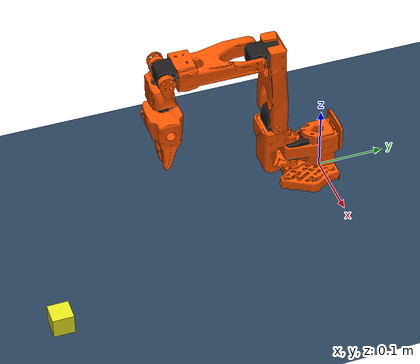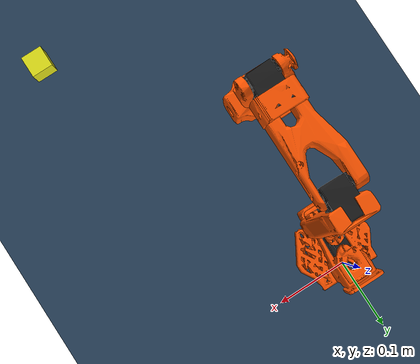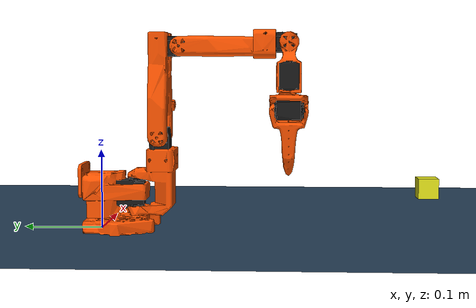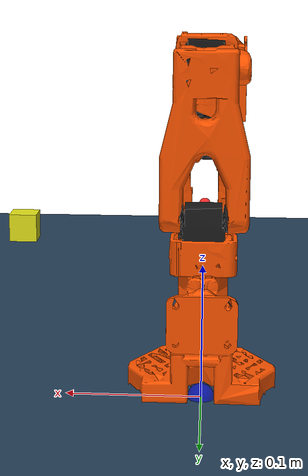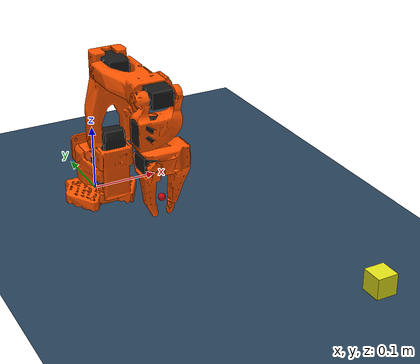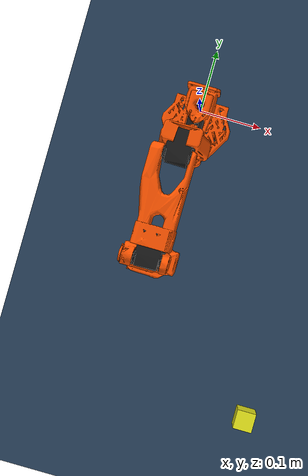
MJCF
<mujoco model="so_arm100 scene">
  <include file="so_arm100.xml"/>

  <statistic center="0 -0.2 0.1" extent="0.4"/>

  <visual>
    <headlight diffuse="0.6 0.6 0.6" ambient="0.3 0.3 0.3" specular="0 0 0"/>
    <rgba haze="0.15 0.25 0.35 1"/>
    <global azimuth="140" elevation="-30"/>
  </visual>

  <asset>
    <texture type="skybox" builtin="gradient" rgb1="0.3 0.5 0.7" rgb2="0 0 0" width="512" height="3072"/>
    <texture type="2d" name="groundplane" builtin="checker" mark="edge" rgb1="0.2 0.3 0.4" rgb2="0.1 0.2 0.3"
      markrgb="0.8 0.8 0.8" width="300" height="300"/>
    <material name="groundplane" texture="groundplane" texuniform="true" texrepeat="5 5" reflectance="0.0"/>
  </asset>

  <worldbody>
    <light pos="0 0 1.5" dir="0 0 -1" directional="true" castshadow="false" />
    <geom name="floor" size="0 0 0.05" type="plane" material="groundplane"/>

    <camera name="front" pos="0 -1 0.08" quat="1 1 0 0" fovy="60"/>

    <body name="block" pos="0.2 -0.45 0.025">
      <joint name="block" type="free"/>
      <geom name="block" type="box" size="0.015 0.015 0.015" rgba="0.9 0.9 0.1 1"/>
      <site name="block_site" pos="0 0 0"/>
    </body>

    <body name="mocap" pos="0 0 0" mocap="true">
      <geom name="mocap" type="sphere" size="0.01" rgba="0 0 1 0.5" contype="0" conaffinity="0" group="1"/>
    </body>
  </worldbody>

  <sensor>
    <framepos name="block_pos" objtype="body" objname="block"/>
    <framelinvel name="block_vel" objtype="body" objname="block"/>
    <frameangvel name="block_angvel" objtype="body" objname="block"/>
  </sensor>

</mujoco>

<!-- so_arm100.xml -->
<mujoco model="so_arm100">
  <compiler angle="radian" meshdir="assets/"/>

  <option cone="elliptic" impratio="10"/>

  <asset>
    <material name="orange" rgba="1.0 0.331 0.0 1.0" specular="0.1" shininess="0.1"/>
    <material name="black" rgba="0.1 0.1 0.1 1.0" specular="0.1" shininess="0.1"/>

    <mesh name="Base" file="Base.stl"/>
    <mesh name="Base_Motor" file="Base_Motor.stl"/>
    <mesh name="Rotation_Pitch" file="Rotation_Pitch.stl"/>
    <mesh name="Rotation_Pitch_Motor" file="Rotation_Pitch_Motor.stl"/>
    <mesh name="Upper_Arm" file="Upper_Arm.stl"/>
    <mesh name="Upper_Arm_Motor" file="Upper_Arm_Motor.stl"/>
    <mesh name="Lower_Arm" file="Lower_Arm.stl"/>
    <mesh name="Lower_Arm_Motor" file="Lower_Arm_Motor.stl"/>
    <mesh name="Wrist_Pitch_Roll" file="Wrist_Pitch_Roll.stl"/>
    <mesh name="Wrist_Pitch_Roll_Motor" file="Wrist_Pitch_Roll_Motor.stl"/>
    <mesh name="Fixed_Jaw" file="Fixed_Jaw.stl"/>
    <mesh name="Fixed_Jaw_Motor" file="Fixed_Jaw_Motor.stl"/>
    <mesh name="Fixed_Jaw_Collision_1" file="Fixed_Jaw_Collision_1.stl"/>
    <mesh name="Fixed_Jaw_Collision_2" file="Fixed_Jaw_Collision_2.stl"/>
    <mesh name="Moving_Jaw" file="Moving_Jaw.stl"/>
    <mesh name="Moving_Jaw_Collision_1" file="Moving_Jaw_Collision_1.stl"/>
    <mesh name="Moving_Jaw_Collision_2" file="Moving_Jaw_Collision_2.stl"/>
    <mesh name="Moving_Jaw_Collision_3" file="Moving_Jaw_Collision_3.stl"/>
  </asset>

  <default>
    <default class="so_arm100">
      <joint frictionloss="0.1" armature="0.01" damping="0.1" limited="true"/>
      <motor forcerange="-35 35" ctrlrange="-3.14158 3.14158"/>
      <default class="Rotation">
        <joint axis="0 1 0" range="-2.2 2.2"/>
      </default>
      <default class="Pitch">
        <joint axis="1 0 0" range="-3.14158 0.2"/>
      </default>
      <default class="Elbow">
        <joint axis="1 0 0" range="0 3.14158"/>
      </default>
      <default class="Wrist_Pitch">
        <joint axis="1 0 0" range="-2.0 1.8"/>
      </default>
      <default class="Wrist_Roll">
        <joint axis="0 1 0" range="-3.14158 3.14158"/>
      </default>
      <default class="Jaw">
        <joint axis="0 0 1" range="-0.2 2.0"/>
      </default>
      <default class="visual">
        <geom type="mesh" contype="0" conaffinity="0" density="0" group="2" material="orange"/>
        <default class="motor_visual">
          <geom material="black"/>
        </default>
      </default>
      <default class="collision">
        <geom group="3" type="mesh"/>
        <default class="finger_collision">
          <geom type="box" solimp="2 1 0.01" solref="0.01 1" friction="1 0.005 0.0001"/>
        </default>
      </default>
    </default>
  </default>

  <worldbody>
    <body name="Base" childclass="so_arm100" >
      <geom type="mesh" mesh="Base" class="visual"/>
      <geom type="mesh" mesh="Base_Motor" class="motor_visual"/>
      <geom type="mesh" mesh="Base" class="collision"/>
      <body name="Rotation_Pitch" pos="0 -0.0452 0.0165" quat="0.707105 0.707108 0 0" >
        <inertial pos="-9.07886e-05 0.0590972 0.031089" quat="0.363978 0.441169 -0.623108 0.533504" mass="0.119226"
          diaginertia="5.94278e-05 5.89975e-05 3.13712e-05" />
        <joint name="Rotation" class="Rotation"/>
        <geom type="mesh" mesh="Rotation_Pitch" class="visual"/>
        <geom type="mesh" mesh="Rotation_Pitch_Motor" class="motor_visual"/>
        <geom type="mesh" mesh="Rotation_Pitch" class="collision"/>
        <body name="Upper_Arm" pos="0 0.1025 0.0306" euler="0 0 0" >
          <inertial pos="-1.72052e-05 0.0701802 0.00310545" quat="0.50104 0.498994 -0.493562 0.50632" mass="0.162409"
            diaginertia="0.000213312 0.000167164 7.01522e-05"/>
          <joint name="Pitch" class="Pitch"/>
          <geom type="mesh" mesh="Upper_Arm" class="visual"/>
          <geom type="mesh" mesh="Upper_Arm_Motor" class="motor_visual"/>
          <geom type="mesh" mesh="Upper_Arm" class="collision"/>
          <body name="Lower_Arm" pos="0 0.11257 0.028" euler="0 0 0" >
            <inertial pos="-0.00339604 0.00137796 0.0768007" quat="0.701995 0.0787996 0.0645626 0.704859"
              mass="0.147968" diaginertia="0.000138803 0.000107748 4.84242e-05"/>
            <joint name="Elbow" class="Elbow"/>
            <geom type="mesh" mesh="Lower_Arm" class="visual"/>
            <geom type="mesh" mesh="Lower_Arm_Motor" class="motor_visual"/>
            <geom type="mesh" mesh="Lower_Arm" class="collision"/>
            <body name="Wrist_Pitch_Roll" pos="0 0.0052 0.1349" euler="0 0 0" >
              <inertial pos="-0.00852653 -0.0352279 -2.34622e-05" quat="-0.0522806 0.705235 0.0549524 0.704905"
                mass="0.0661321" diaginertia="3.45403e-05 2.39041e-05 1.94704e-05"/>
              <joint name="Wrist_Pitch" class="Wrist_Pitch"/>
              <geom type="mesh" mesh="Wrist_Pitch_Roll" class="visual"/>
              <geom type="mesh" mesh="Wrist_Pitch_Roll_Motor" class="motor_visual"/>
              <geom type="mesh" mesh="Wrist_Pitch_Roll" class="collision"/>
              <body name="Fixed_Jaw" pos="0 -0.0601 0" euler="0 0 0" >
                <inertial pos="0.00552377 -0.0280167 0.000483583" quat="0.41836 0.620891 -0.350644 0.562599"
                  mass="0.0929859" diaginertia="5.03136e-05 4.64098e-05 2.72961e-05"/>
                <joint name="Wrist_Roll" class="Wrist_Roll"/>
                <geom type="mesh" mesh="Fixed_Jaw" class="visual"/>
                <geom type="mesh" mesh="Fixed_Jaw_Motor" class="motor_visual"/>
                <geom type="mesh" mesh="Fixed_Jaw_Collision_1" class="collision"/>
                <geom type="mesh" mesh="Fixed_Jaw_Collision_2" class="collision"/>
                <geom class="finger_collision" name="fixed_jaw_pad_1" size="0.001 0.005 0.004" pos="0.0089 -0.1014 0"/>
                <geom class="finger_collision" name="fixed_jaw_pad_2" size="0.001 0.005 0.006" pos="0.0109 -0.0914 0"/>
                <geom class="finger_collision" name="fixed_jaw_pad_3" size="0.001 0.01 0.007" pos="0.0126 -0.0768 0"/>
                <geom class="finger_collision" name="fixed_jaw_pad_4" size="0.001 0.01 0.008" pos="0.0143 -0.0572 0"/>
                <site name="gripper_site" pos="0 -0.08 0" size="0.005" rgba="1 0 0 0.8"/>
                <frame name="gripper_frame" objtype="site" objname="gripper_site"/>
                <!-- 机械爪相机 - 安装在固定爪上，朝向抓取方向 -->
                <camera name="gripper_cam" pos="0 -0.04 0.05" euler="-1.1 0 -1.5708" fovy="60"/>
                <body name="Moving_Jaw" pos="-0.0202 -0.0244 0" quat="1.34924e-11 -3.67321e-06 1 -3.67321e-06" >
                  <inertial pos="-0.00161745 -0.0303473 0.000449646" quat="0.696562 0.716737 -0.0239844 -0.0227026"
                    mass="0.0202444" diaginertia="1.11265e-05 8.99651e-06 2.99548e-06"/>
                  <joint name="Jaw" class="Jaw"/>
                  <geom type="mesh" mesh="Moving_Jaw" class="visual"/>
                  <geom type="mesh" mesh="Moving_Jaw_Collision_1" class="collision"/>
                  <geom type="mesh" mesh="Moving_Jaw_Collision_2" class="collision"/>
                  <geom type="mesh" mesh="Moving_Jaw_Collision_3" class="collision"/>
                  <geom class="finger_collision" name="moving_jaw_pad_1" size="0.001 0.005 0.004" pos="-0.0113 -0.077 0"/>
                  <geom class="finger_collision" name="moving_jaw_pad_2" size="0.001 0.005 0.006" pos="-0.0093 -0.067 0"/>
                  <geom class="finger_collision" name="moving_jaw_pad_3" size="0.001 0.01 0.006" pos="-0.0073 -0.055 0"/>
                  <geom class="finger_collision" name="moving_jaw_pad_4" size="0.001 0.01 0.008" pos="-0.0073 -0.035 0"/>
                </body>
              </body>
            </body>
          </body>
        </body>
      </body>
    </body>
  </worldbody>

  <actuator>
    <motor class="Rotation" name="Rotation" joint="Rotation"/>
    <motor class="Pitch" name="Pitch" joint="Pitch"/>
    <motor class="Elbow" name="Elbow" joint="Elbow"/>
    <motor class="Wrist_Pitch" name="Wrist_Pitch" joint="Wrist_Pitch"/>
    <motor class="Wrist_Roll" name="Wrist_Roll" joint="Wrist_Roll"/>
    <motor class="Jaw" name="Jaw" joint="Jaw"/>
  </actuator>

  <sensor>
    <!-- 关节位置和速度传感器 -->
    <jointpos name="so100/shoulder_pan_pos" joint="Rotation"/>
    <jointpos name="so100/shoulder_lift_pos" joint="Pitch"/>
    <jointpos name="so100/elbow_flex_pos" joint="Elbow"/>
    <jointpos name="so100/wrist_flex_pos" joint="Wrist_Pitch"/>
    <jointpos name="so100/wrist_roll_pos" joint="Wrist_Roll"/>
    <jointpos name="so100/gripper_pos" joint="Jaw"/>

    <jointvel name="so100/shoulder_pan_vel" joint="Rotation"/>
    <jointvel name="so100/shoulder_lift_vel" joint="Pitch"/>
    <jointvel name="so100/elbow_flex_vel" joint="Elbow"/>
    <jointvel name="so100/wrist_flex_vel" joint="Wrist_Pitch"/>
    <jointvel name="so100/wrist_roll_vel" joint="Wrist_Roll"/>
    <jointvel name="so100/gripper_vel" joint="Jaw"/>

    <!-- 末端执行器传感器 -->
    <framepos name="so100/gripper_site_pos" objtype="site" objname="gripper_site"/>
    <framequat name="so100/gripper_quat" objtype="site" objname="gripper_site"/>
    <framelinvel name="so100/gripper_site_vel" objtype="site" objname="gripper_site"/>
    <frameangvel name="so100/gripper_site_angvel" objtype="site" objname="gripper_site"/>
  </sensor>

  <contact>
    <exclude body1="Base" body2="Rotation_Pitch"/>
  </contact>

</mujoco>
